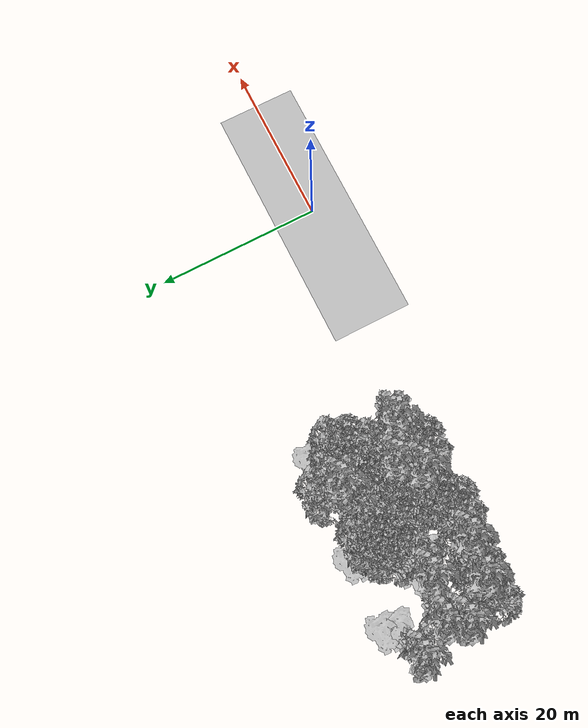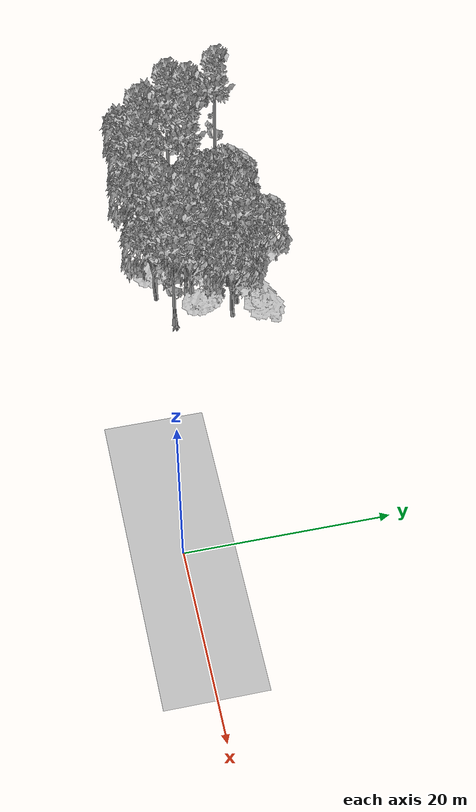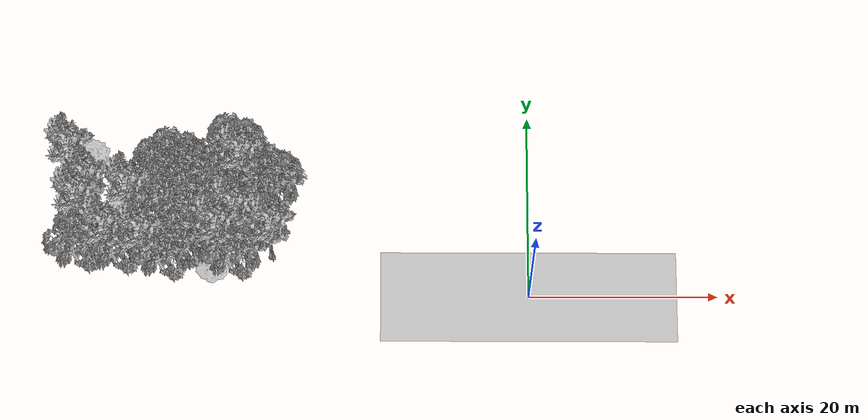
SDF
<sdf version="1.7">
 <world name="default">
  <model name="ground_plane">
   <static>1</static>
   <link name="link">
    <collision name="collision">
     <pose>-50 0 0 0 -0 0</pose>
     <geometry><plane><normal>0 0 1</normal><size>100 100</size></plane></geometry>
     <surface><contact><ode><min_depth>0.01</min_depth><max_vel>0</max_vel></ode></contact></surface>
    </collision>
    <visual name="grass">
     <cast_shadows>0</cast_shadows>
     <geometry>
      <mesh>
       <scale>0.5814285714285714 0.18142857142857144 0.1</scale>
       <uri>file://grass_plane/meshes/grass_plane.dae</uri>
      </mesh>
     </geometry>
    </visual>
   </link>
  </model>
  <model name="Tree 10">
   <static>1</static>
   <pose>-28.88715911877962 7.5835889109082295 0 1.57079 -0 0</pose>
   <link name="link">
    <collision name="collision">
     <geometry><mesh><scale>4 2.5 4</scale><uri>model://tree_1/meshes/tree_1.obj</uri></mesh></geometry>
    </collision>
    <visual name="visual">
     <geometry><mesh><scale>4 2.5 4</scale><uri>model://tree_1/meshes/tree_1.obj</uri></mesh></geometry>
    </visual>
   </link>
  </model>
  <model name="Tree 13">
   <static>1</static>
   <pose>-34.13500504389717 6.870767040708287 0 1.57079 -0 0</pose>
   <link name="link">
    <collision name="collision">
     <geometry><mesh><scale>4 2.5 4</scale><uri>model://tree_1/meshes/tree_1.obj</uri></mesh></geometry>
    </collision>
    <visual name="visual">
     <geometry><mesh><scale>4 2.5 4</scale><uri>model://tree_1/meshes/tree_1.obj</uri></mesh></geometry>
    </visual>
   </link>
  </model>
  <model name="Tree 19">
   <static>1</static>
   <pose>-38.95482112076441 11.331748140919487 0 1.57079 -0 0</pose>
   <link name="link">
    <collision name="collision">
     <geometry><mesh><scale>3.5 5 3.5</scale><uri>model://tree_2/meshes/tree_2.obj</uri></mesh></geometry>
    </collision>
    <visual name="visual">
     <geometry><mesh><scale>3.5 5 3.5</scale><uri>model://tree_2/meshes/tree_2.obj</uri></mesh></geometry>
    </visual>
   </link>
  </model>
  <model name="Tree 33">
   <static>1</static>
   <pose>-41.93410900292786 9.804616000507142 0 1.57079 -0 0</pose>
   <link name="link">
    <collision name="collision">
     <geometry><mesh><scale>3 2 3</scale><uri>model://tree_3/meshes/tree_3.obj</uri></mesh></geometry>
    </collision>
    <visual name="visual">
     <geometry><mesh><scale>3 2 3</scale><uri>model://tree_3/meshes/tree_3.obj</uri></mesh></geometry>
    </visual>
   </link>
  </model>
  <model name="Tree 36">
   <static>1</static>
   <pose>-47.36124406308606 7.6024185314284125 0 1.57079 -0 0</pose>
   <link name="link">
    <collision name="collision">
     <geometry><mesh><scale>3.5 5 3.5</scale><uri>model://tree_9/meshes/tree_9.obj</uri></mesh></geometry>
    </collision>
    <visual name="visual">
     <geometry><mesh><scale>3.5 5 3.5</scale><uri>model://tree_9/meshes/tree_9.obj</uri></mesh></geometry>
    </visual>
   </link>
  </model>
  <model name="Tree 51">
   <static>1</static>
   <pose>-40.66382033064356 3.5948541314228137 0 1.57079 -0 0</pose>
   <link name="link">
    <collision name="collision">
     <geometry><mesh><scale>3.5 5 3.5</scale><uri>model://tree_9/meshes/tree_9.obj</uri></mesh></geometry>
    </collision>
    <visual name="visual">
     <geometry><mesh><scale>3.5 5 3.5</scale><uri>model://tree_9/meshes/tree_9.obj</uri></mesh></geometry>
    </visual>
   </link>
  </model>
  <model name="Tree 88">
   <static>1</static>
   <pose>-38.30331137244642 7.327090761392288 0 1.57079 -0 0</pose>
   <link name="link">
    <collision name="collision">
     <geometry><mesh><scale>3 2 3</scale><uri>model://tree_3/meshes/tree_3.obj</uri></mesh></geometry>
    </collision>
    <visual name="visual">
     <geometry><mesh><scale>3 2 3</scale><uri>model://tree_3/meshes/tree_3.obj</uri></mesh></geometry>
    </visual>
   </link>
  </model>
  <model name="Tree 113">
   <static>1</static>
   <pose>-37.37324689512453 12.471284391333548 0 1.57079 -0 0</pose>
   <link name="link">
    <collision name="collision">
     <geometry><mesh><scale>3.5 5 3.5</scale><uri>model://tree_2/meshes/tree_2.obj</uri></mesh></geometry>
    </collision>
    <visual name="visual">
     <geometry><mesh><scale>3.5 5 3.5</scale><uri>model://tree_2/meshes/tree_2.obj</uri></mesh></geometry>
    </visual>
   </link>
  </model>
  <model name="Tree 119">
   <static>1</static>
   <pose>-31.313357245313295 10.710575903376334 0 1.57079 -0 0</pose>
   <link name="link">
    <collision name="collision">
     <geometry><mesh><scale>3.5 5 3.5</scale><uri>model://tree_2/meshes/tree_2.obj</uri></mesh></geometry>
    </collision>
    <visual name="visual">
     <geometry><mesh><scale>3.5 5 3.5</scale><uri>model://tree_2/meshes/tree_2.obj</uri></mesh></geometry>
    </visual>
   </link>
  </model>
  <model name="Tree 131">
   <static>1</static>
   <pose>-27.194245725797266 10.415924979810708 0 1.57079 -0 0</pose>
   <link name="link">
    <collision name="collision">
     <geometry><mesh><scale>3.5 5 3.5</scale><uri>model://tree_2/meshes/tree_2.obj</uri></mesh></geometry>
    </collision>
    <visual name="visual">
     <geometry><mesh><scale>3.5 5 3.5</scale><uri>model://tree_2/meshes/tree_2.obj</uri></mesh></geometry>
    </visual>
   </link>
  </model>
  <model name="Tree 135">
   <static>1</static>
   <pose>-40.03514325567145 11.36109530523349 0 1.57079 -0 0</pose>
   <link name="link">
    <collision name="collision">
     <geometry><mesh><scale>4 2.5 4</scale><uri>model://tree_1/meshes/tree_1.obj</uri></mesh></geometry>
    </collision>
    <visual name="visual">
     <geometry><mesh><scale>4 2.5 4</scale><uri>model://tree_1/meshes/tree_1.obj</uri></mesh></geometry>
    </visual>
   </link>
  </model>
  <model name="Tree 147">
   <static>1</static>
   <pose>-36.45254102220715 11.571622010807474 0 1.57079 -0 0</pose>
   <link name="link">
    <collision name="collision">
     <geometry><mesh><scale>3.5 5 3.5</scale><uri>model://tree_2/meshes/tree_2.obj</uri></mesh></geometry>
    </collision>
    <visual name="visual">
     <geometry><mesh><scale>3.5 5 3.5</scale><uri>model://tree_2/meshes/tree_2.obj</uri></mesh></geometry>
    </visual>
   </link>
  </model>
  <model name="Tree 150">
   <static>1</static>
   <pose>-37.65894827389879 8.315803896445686 0 1.57079 -0 0</pose>
   <link name="link">
    <collision name="collision">
     <geometry><mesh><scale>4 2.5 4</scale><uri>model://tree_1/meshes/tree_1.obj</uri></mesh></geometry>
    </collision>
    <visual name="visual">
     <geometry><mesh><scale>4 2.5 4</scale><uri>model://tree_1/meshes/tree_1.obj</uri></mesh></geometry>
    </visual>
   </link>
  </model>
  <model name="Tree 167">
   <static>1</static>
   <pose>-42.95631994112603 3.7105164798934567 0 1.57079 -0 0</pose>
   <link name="link">
    <collision name="collision">
     <geometry><mesh><scale>3.5 5 3.5</scale><uri>model://tree_2/meshes/tree_2.obj</uri></mesh></geometry>
    </collision>
    <visual name="visual">
     <geometry><mesh><scale>3.5 5 3.5</scale><uri>model://tree_2/meshes/tree_2.obj</uri></mesh></geometry>
    </visual>
   </link>
  </model>
  <model name="Tree 181">
   <static>1</static>
   <pose>-30.517120141030738 12.242243128229148 0 1.57079 -0 0</pose>
   <link name="link">
    <collision name="collision">
     <geometry><mesh><scale>3.5 5 3.5</scale><uri>model://tree_9/meshes/tree_9.obj</uri></mesh></geometry>
    </collision>
    <visual name="visual">
     <geometry><mesh><scale>3.5 5 3.5</scale><uri>model://tree_9/meshes/tree_9.obj</uri></mesh></geometry>
    </visual>
   </link>
  </model>
  <model name="Tree 187">
   <static>1</static>
   <pose>-28.142248873499764 13.188231949588058 0 1.57079 -0 0</pose>
   <link name="link">
    <collision name="collision">
     <geometry><mesh><scale>3 2 3</scale><uri>model://tree_3/meshes/tree_3.obj</uri></mesh></geometry>
    </collision>
    <visual name="visual">
     <geometry><mesh><scale>3 2 3</scale><uri>model://tree_3/meshes/tree_3.obj</uri></mesh></geometry>
    </visual>
   </link>
  </model>
  <model name="Tree 199">
   <static>1</static>
   <pose>-46.988516947150174 14.953436832558111 0 1.57079 -0 0</pose>
   <link name="link">
    <collision name="collision">
     <geometry><mesh><scale>3 2 3</scale><uri>model://tree_3/meshes/tree_3.obj</uri></mesh></geometry>
    </collision>
    <visual name="visual">
     <geometry><mesh><scale>3 2 3</scale><uri>model://tree_3/meshes/tree_3.obj</uri></mesh></geometry>
    </visual>
   </link>
  </model>
  <model name="Tree 208">
   <static>1</static>
   <pose>-42.07251242623873 8.68138652700188 0 1.57079 -0 0</pose>
   <link name="link">
    <collision name="collision">
     <geometry><mesh><scale>3.5 5 3.5</scale><uri>model://tree_9/meshes/tree_9.obj</uri></mesh></geometry>
    </collision>
    <visual name="visual">
     <geometry><mesh><scale>3.5 5 3.5</scale><uri>model://tree_9/meshes/tree_9.obj</uri></mesh></geometry>
    </visual>
   </link>
  </model>
  <model name="Tree 213">
   <static>1</static>
   <pose>-32.85020364303112 4.475748769744481 0 1.57079 -0 0</pose>
   <link name="link">
    <collision name="collision">
     <geometry><mesh><scale>3.5 5 3.5</scale><uri>model://tree_9/meshes/tree_9.obj</uri></mesh></geometry>
    </collision>
    <visual name="visual">
     <geometry><mesh><scale>3.5 5 3.5</scale><uri>model://tree_9/meshes/tree_9.obj</uri></mesh></geometry>
    </visual>
   </link>
  </model>
  <model name="Tree 221">
   <static>1</static>
   <pose>-33.38983309410424 5.6366093259766785 0 1.57079 -0 0</pose>
   <link name="link">
    <collision name="collision">
     <geometry><mesh><scale>3.5 5 3.5</scale><uri>model://tree_2/meshes/tree_2.obj</uri></mesh></geometry>
    </collision>
    <visual name="visual">
     <geometry><mesh><scale>3.5 5 3.5</scale><uri>model://tree_2/meshes/tree_2.obj</uri></mesh></geometry>
    </visual>
   </link>
  </model>
  <model name="Tree 228">
   <static>1</static>
   <pose>-26.98368474049924 13.660931717117943 0 1.57079 -0 0</pose>
   <link name="link">
    <collision name="collision">
     <geometry><mesh><scale>3 2 3</scale><uri>model://tree_3/meshes/tree_3.obj</uri></mesh></geometry>
    </collision>
    <visual name="visual">
     <geometry><mesh><scale>3 2 3</scale><uri>model://tree_3/meshes/tree_3.obj</uri></mesh></geometry>
    </visual>
   </link>
  </model>
  <model name="Tree 230">
   <static>1</static>
   <pose>-36.54157075360831 4.345798203596928 0 1.57079 -0 0</pose>
   <link name="link">
    <collision name="collision">
     <geometry><mesh><scale>3.5 5 3.5</scale><uri>model://tree_2/meshes/tree_2.obj</uri></mesh></geometry>
    </collision>
    <visual name="visual">
     <geometry><mesh><scale>3.5 5 3.5</scale><uri>model://tree_2/meshes/tree_2.obj</uri></mesh></geometry>
    </visual>
   </link>
  </model>
  <model name="Tree 246">
   <static>1</static>
   <pose>-28.81466528547705 11.215560409852817 0 1.57079 -0 0</pose>
   <link name="link">
    <collision name="collision">
     <geometry><mesh><scale>3.5 5 3.5</scale><uri>model://tree_2/meshes/tree_2.obj</uri></mesh></geometry>
    </collision>
    <visual name="visual">
     <geometry><mesh><scale>3.5 5 3.5</scale><uri>model://tree_2/meshes/tree_2.obj</uri></mesh></geometry>
    </visual>
   </link>
  </model>
  <model name="Tree 274">
   <static>1</static>
   <pose>-46.34234463976024 9.468162379635196 0 1.57079 -0 0</pose>
   <link name="link">
    <collision name="collision">
     <geometry><mesh><scale>3.5 5 3.5</scale><uri>model://tree_9/meshes/tree_9.obj</uri></mesh></geometry>
    </collision>
    <visual name="visual">
     <geometry><mesh><scale>3.5 5 3.5</scale><uri>model://tree_9/meshes/tree_9.obj</uri></mesh></geometry>
    </visual>
   </link>
  </model>
  <model name="Tree 304">
   <static>1</static>
   <pose>-31.186266440322623 14.022753636362705 0 1.57079 -0 0</pose>
   <link name="link">
    <collision name="collision">
     <geometry><mesh><scale>3.5 5 3.5</scale><uri>model://tree_2/meshes/tree_2.obj</uri></mesh></geometry>
    </collision>
    <visual name="visual">
     <geometry><mesh><scale>3.5 5 3.5</scale><uri>model://tree_2/meshes/tree_2.obj</uri></mesh></geometry>
    </visual>
   </link>
  </model>
  <model name="Tree 307">
   <static>1</static>
   <pose>-48.19820029876878 12.934901912404886 0 1.57079 -0 0</pose>
   <link name="link">
    <collision name="collision">
     <geometry><mesh><scale>3.5 5 3.5</scale><uri>model://tree_9/meshes/tree_9.obj</uri></mesh></geometry>
    </collision>
    <visual name="visual">
     <geometry><mesh><scale>3.5 5 3.5</scale><uri>model://tree_9/meshes/tree_9.obj</uri></mesh></geometry>
    </visual>
   </link>
  </model>
  <model name="Tree 312">
   <static>1</static>
   <pose>-32.269854995438564 10.710411051614283 0 1.57079 -0 0</pose>
   <link name="link">
    <collision name="collision">
     <geometry><mesh><scale>3.5 5 3.5</scale><uri>model://tree_2/meshes/tree_2.obj</uri></mesh></geometry>
    </collision>
    <visual name="visual">
     <geometry><mesh><scale>3.5 5 3.5</scale><uri>model://tree_2/meshes/tree_2.obj</uri></mesh></geometry>
    </visual>
   </link>
  </model>
  <model name="Tree 321">
   <static>1</static>
   <pose>-31.006329600261743 3.1163844458826766 0 1.57079 -0 0</pose>
   <link name="link">
    <collision name="collision">
     <geometry><mesh><scale>3.5 5 3.5</scale><uri>model://tree_2/meshes/tree_2.obj</uri></mesh></geometry>
    </collision>
    <visual name="visual">
     <geometry><mesh><scale>3.5 5 3.5</scale><uri>model://tree_2/meshes/tree_2.obj</uri></mesh></geometry>
    </visual>
   </link>
  </model>
  <model name="Tree 327">
   <static>1</static>
   <pose>-41.9285530539462 6.85166068685789 0 1.57079 -0 0</pose>
   <link name="link">
    <collision name="collision">
     <geometry><mesh><scale>4 2.5 4</scale><uri>model://tree_1/meshes/tree_1.obj</uri></mesh></geometry>
    </collision>
    <visual name="visual">
     <geometry><mesh><scale>4 2.5 4</scale><uri>model://tree_1/meshes/tree_1.obj</uri></mesh></geometry>
    </visual>
   </link>
  </model>
  <model name="Tree 332">
   <static>1</static>
   <pose>-38.54492001047412 12.006884242656078 0 1.57079 -0 0</pose>
   <link name="link">
    <collision name="collision">
     <geometry><mesh><scale>4 2.5 4</scale><uri>model://tree_1/meshes/tree_1.obj</uri></mesh></geometry>
    </collision>
    <visual name="visual">
     <geometry><mesh><scale>4 2.5 4</scale><uri>model://tree_1/meshes/tree_1.obj</uri></mesh></geometry>
    </visual>
   </link>
  </model>
  <model name="Tree 344">
   <static>1</static>
   <pose>-36.04537336318758 8.535032518270253 0 1.57079 -0 0</pose>
   <link name="link">
    <collision name="collision">
     <geometry><mesh><scale>3.5 5 3.5</scale><uri>model://tree_2/meshes/tree_2.obj</uri></mesh></geometry>
    </collision>
    <visual name="visual">
     <geometry><mesh><scale>3.5 5 3.5</scale><uri>model://tree_2/meshes/tree_2.obj</uri></mesh></geometry>
    </visual>
   </link>
  </model>
  <model name="Tree 363">
   <static>1</static>
   <pose>-31.09247093271932 6.361443405396674 0 1.57079 -0 0</pose>
   <link name="link">
    <collision name="collision">
     <geometry><mesh><scale>3.5 5 3.5</scale><uri>model://tree_9/meshes/tree_9.obj</uri></mesh></geometry>
    </collision>
    <visual name="visual">
     <geometry><mesh><scale>3.5 5 3.5</scale><uri>model://tree_9/meshes/tree_9.obj</uri></mesh></geometry>
    </visual>
   </link>
  </model>
  <model name="Tree 379">
   <static>1</static>
   <pose>-29.400650866011578 6.617078779415966 0 1.57079 -0 0</pose>
   <link name="link">
    <collision name="collision">
     <geometry><mesh><scale>3.5 5 3.5</scale><uri>model://tree_2/meshes/tree_2.obj</uri></mesh></geometry>
    </collision>
    <visual name="visual">
     <geometry><mesh><scale>3.5 5 3.5</scale><uri>model://tree_2/meshes/tree_2.obj</uri></mesh></geometry>
    </visual>
   </link>
  </model>
  <model name="Tree 403">
   <static>1</static>
   <pose>-44.326154743925855 4.139948892450835 0 1.57079 -0 0</pose>
   <link name="link">
    <collision name="collision">
     <geometry><mesh><scale>3.5 5 3.5</scale><uri>model://tree_9/meshes/tree_9.obj</uri></mesh></geometry>
    </collision>
    <visual name="visual">
     <geometry><mesh><scale>3.5 5 3.5</scale><uri>model://tree_9/meshes/tree_9.obj</uri></mesh></geometry>
    </visual>
   </link>
  </model>
  <model name="Tree 406">
   <static>1</static>
   <pose>-43.633437374787235 8.645208396352793 0 1.57079 -0 0</pose>
   <link name="link">
    <collision name="collision">
     <geometry><mesh><scale>3 2 3</scale><uri>model://tree_3/meshes/tree_3.obj</uri></mesh></geometry>
    </collision>
    <visual name="visual">
     <geometry><mesh><scale>3 2 3</scale><uri>model://tree_3/meshes/tree_3.obj</uri></mesh></geometry>
    </visual>
   </link>
  </model>
  <model name="Tree 408">
   <static>1</static>
   <pose>-32.95680875150451 6.433846557646238 0 1.57079 -0 0</pose>
   <link name="link">
    <collision name="collision">
     <geometry><mesh><scale>3.5 5 3.5</scale><uri>model://tree_2/meshes/tree_2.obj</uri></mesh></geometry>
    </collision>
    <visual name="visual">
     <geometry><mesh><scale>3.5 5 3.5</scale><uri>model://tree_2/meshes/tree_2.obj</uri></mesh></geometry>
    </visual>
   </link>
  </model>
  <model name="Tree 411">
   <static>1</static>
   <pose>-32.88955847744486 9.118167418324525 0 1.57079 -0 0</pose>
   <link name="link">
    <collision name="collision">
     <geometry><mesh><scale>3 2 3</scale><uri>model://tree_3/meshes/tree_3.obj</uri></mesh></geometry>
    </collision>
    <visual name="visual">
     <geometry><mesh><scale>3 2 3</scale><uri>model://tree_3/meshes/tree_3.obj</uri></mesh></geometry>
    </visual>
   </link>
  </model>
  <model name="Tree 415">
   <static>1</static>
   <pose>-46.989495493938605 3.934358656617821 0 1.57079 -0 0</pose>
   <link name="link">
    <collision name="collision">
     <geometry><mesh><scale>3.5 5 3.5</scale><uri>model://tree_2/meshes/tree_2.obj</uri></mesh></geometry>
    </collision>
    <visual name="visual">
     <geometry><mesh><scale>3.5 5 3.5</scale><uri>model://tree_2/meshes/tree_2.obj</uri></mesh></geometry>
    </visual>
   </link>
  </model>
  <model name="Tree 422">
   <static>1</static>
   <pose>-38.926822420107676 14.71554951626337 0 1.57079 -0 0</pose>
   <link name="link">
    <collision name="collision">
     <geometry><mesh><scale>3 2 3</scale><uri>model://tree_3/meshes/tree_3.obj</uri></mesh></geometry>
    </collision>
    <visual name="visual">
     <geometry><mesh><scale>3 2 3</scale><uri>model://tree_3/meshes/tree_3.obj</uri></mesh></geometry>
    </visual>
   </link>
  </model>
  <model name="Tree 431">
   <static>1</static>
   <pose>-38.97198978073888 11.756950827094332 0 1.57079 -0 0</pose>
   <link name="link">
    <collision name="collision">
     <geometry><mesh><scale>3 2 3</scale><uri>model://tree_3/meshes/tree_3.obj</uri></mesh></geometry>
    </collision>
    <visual name="visual">
     <geometry><mesh><scale>3 2 3</scale><uri>model://tree_3/meshes/tree_3.obj</uri></mesh></geometry>
    </visual>
   </link>
  </model>
  <model name="Tree 448">
   <static>1</static>
   <pose>-33.65542930337298 3.3553482716634946 0 1.57079 -0 0</pose>
   <link name="link">
    <collision name="collision">
     <geometry><mesh><scale>4 2.5 4</scale><uri>model://tree_1/meshes/tree_1.obj</uri></mesh></geometry>
    </collision>
    <visual name="visual">
     <geometry><mesh><scale>4 2.5 4</scale><uri>model://tree_1/meshes/tree_1.obj</uri></mesh></geometry>
    </visual>
   </link>
  </model>
  <model name="Tree 465">
   <static>1</static>
   <pose>-38.13844368703734 3.008610636858524 0 1.57079 -0 0</pose>
   <link name="link">
    <collision name="collision">
     <geometry><mesh><scale>3.5 5 3.5</scale><uri>model://tree_2/meshes/tree_2.obj</uri></mesh></geometry>
    </collision>
    <visual name="visual">
     <geometry><mesh><scale>3.5 5 3.5</scale><uri>model://tree_2/meshes/tree_2.obj</uri></mesh></geometry>
    </visual>
   </link>
  </model>
  <model name="Tree 475">
   <static>1</static>
   <pose>-47.38844281504432 13.220426982114319 0 1.57079 -0 0</pose>
   <link name="link">
    <collision name="collision">
     <geometry><mesh><scale>3 2 3</scale><uri>model://tree_3/meshes/tree_3.obj</uri></mesh></geometry>
    </collision>
    <visual name="visual">
     <geometry><mesh><scale>3 2 3</scale><uri>model://tree_3/meshes/tree_3.obj</uri></mesh></geometry>
    </visual>
   </link>
  </model>
  <model name="Tree 489">
   <static>1</static>
   <pose>-38.57968173350803 9.725847724121781 0 1.57079 -0 0</pose>
   <link name="link">
    <collision name="collision">
     <geometry><mesh><scale>3.5 5 3.5</scale><uri>model://tree_2/meshes/tree_2.obj</uri></mesh></geometry>
    </collision>
    <visual name="visual">
     <geometry><mesh><scale>3.5 5 3.5</scale><uri>model://tree_2/meshes/tree_2.obj</uri></mesh></geometry>
    </visual>
   </link>
  </model>
  <model name="Tree 494">
   <static>1</static>
   <pose>-27.24599885639315 4.424595287454636 0 1.57079 -0 0</pose>
   <link name="link">
    <collision name="collision">
     <geometry><mesh><scale>3.5 5 3.5</scale><uri>model://tree_9/meshes/tree_9.obj</uri></mesh></geometry>
    </collision>
    <visual name="visual">
     <geometry><mesh><scale>3.5 5 3.5</scale><uri>model://tree_9/meshes/tree_9.obj</uri></mesh></geometry>
    </visual>
   </link>
  </model>
  <model name="Tree 534">
   <static>1</static>
   <pose>-35.539096495440376 7.456368901068785 0 1.57079 -0 0</pose>
   <link name="link">
    <collision name="collision">
     <geometry><mesh><scale>4 2.5 4</scale><uri>model://tree_1/meshes/tree_1.obj</uri></mesh></geometry>
    </collision>
    <visual name="visual">
     <geometry><mesh><scale>4 2.5 4</scale><uri>model://tree_1/meshes/tree_1.obj</uri></mesh></geometry>
    </visual>
   </link>
  </model>
 </world>
</sdf>
